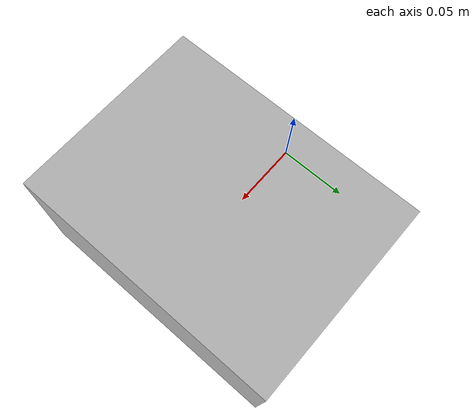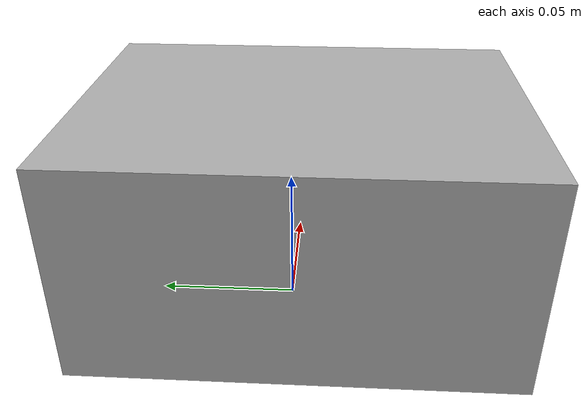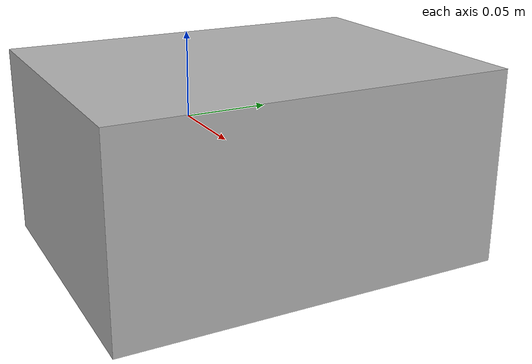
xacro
<?xml version="1.0" ?>
<robot name="box" xmlns:xacro="http://www.ros.org/wiki/xacro">

<xacro:include filename="$(find box_description)/urdf/materials.xacro" />
<xacro:include filename="$(find box_description)/urdf/box.trans" />
<xacro:include filename="$(find box_description)/urdf/box.gazebo" />
<link name="imu_link">
  <inertial>
    <origin xyz="0.075 0.0 0.0" rpy="0 0 0"/>
    <mass value="23.549999999999997"/>
    <inertia ixx="0.098125" iyy="0.063781" izz="0.122656" ixy="0.0" iyz="0.0" ixz="0.0"/>
  </inertial>
  <visual>
    <origin xyz="0 0 0" rpy="0 0 0"/>
    <geometry>
      <mesh filename="package://box_description/meshes/imu_link.stl" scale="0.001 0.001 0.001"/>
    </geometry>
    <material name="silver"/>
  </visual>
  <collision>
    <origin xyz="0 0 0" rpy="0 0 0"/>
    <geometry>
      <mesh filename="package://box_description/meshes/imu_link.stl" scale="0.001 0.001 0.001"/>
    </geometry>
  </collision>
</link>

</robot>

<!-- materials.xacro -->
<robot name="box" xmlns:xacro="http://www.ros.org/wiki/xacro" >

<material name="silver">
  <color rgba="0.700 0.700 0.700 1.000"/>
</material>

</robot>

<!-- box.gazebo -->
<robot name="box" xmlns:xacro="http://www.ros.org/wiki/xacro" >

<xacro:property name="body_color" value="Gazebo/Silver" />

<gazebo>
  <plugin name="control" filename="libgazebo_ros_control.so"/>
</gazebo>
<gazebo reference="base_link">
  <material>${body_color}</material>
  <mu1>0.2</mu1>
  <mu2>0.2</mu2>
  <selfCollide>true</selfCollide>
  <gravity>true</gravity>
</gazebo>

</robot>
